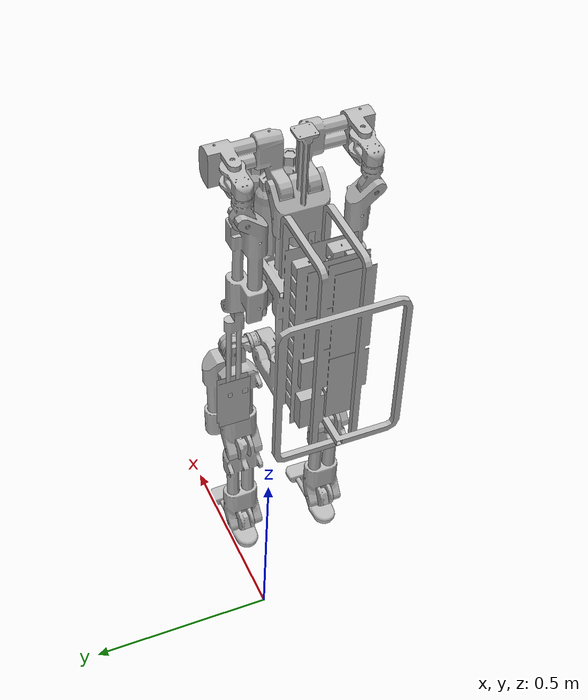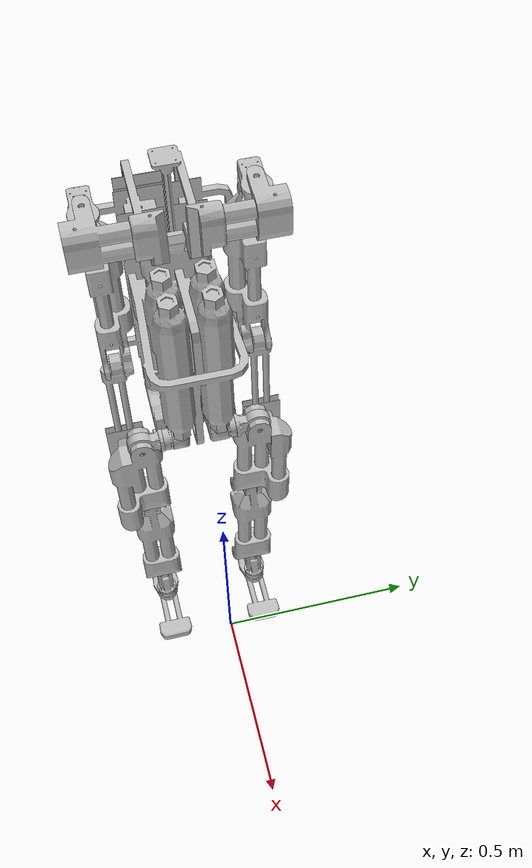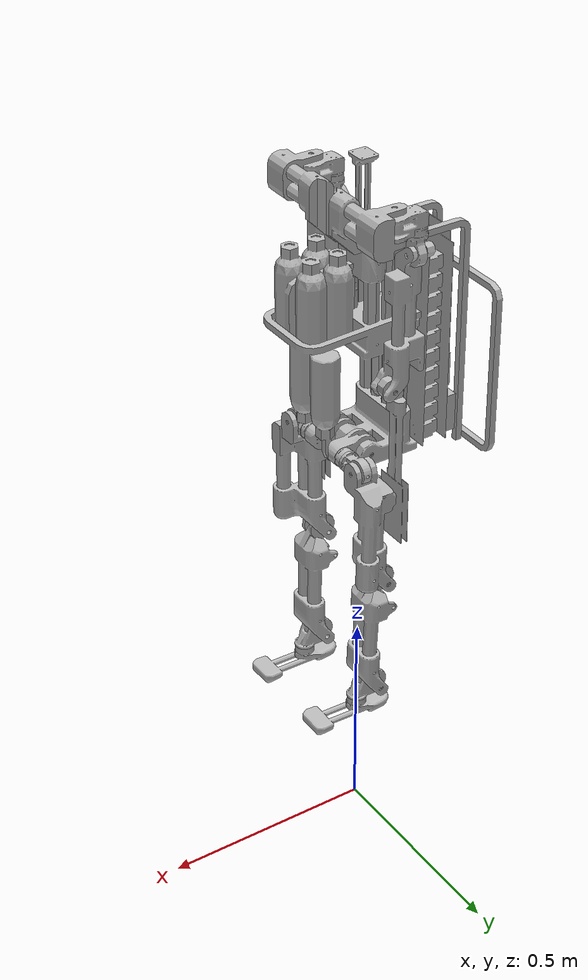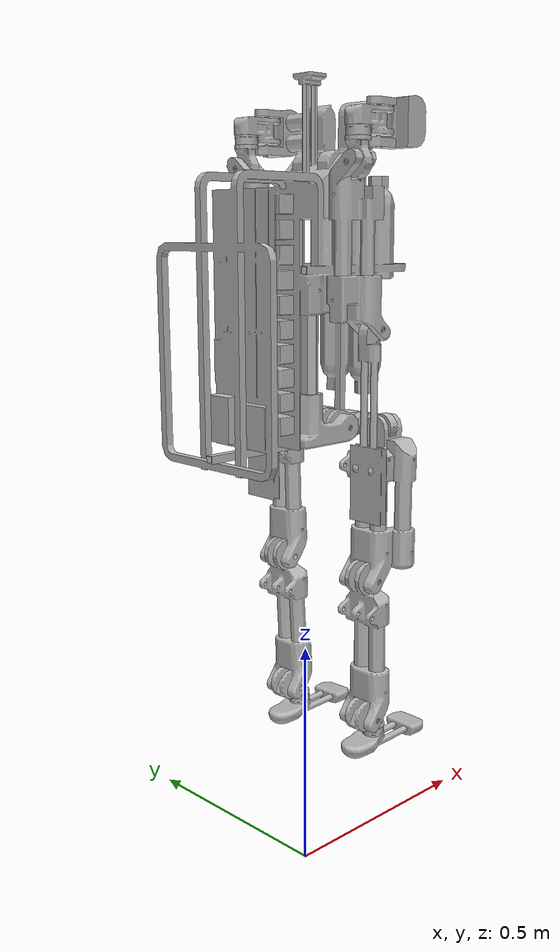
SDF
<?xml version='1.0'?>
<sdf version='1.5'>
  <model name='ATHLETE_ROBOT_CY'>
    <pose>0 0 1 1.57 0 0</pose>
    <link name='trunk'>
      <pose>0 0 0 0 -0 0</pose>
      <inertial>
        <pose>-0.0961522 0.204529 0.0399363 0 -0 0</pose>
        <mass>0.332145</mass>
        <inertia>
          <ixx>0.00851663</ixx>
          <ixy>-0.00152785</ixy>
          <ixz>6.63328e-05</ixz>
          <iyy>0.00387154</iyy>
          <iyz>0.0001264</iyz>
          <izz>0.0107068</izz>
        </inertia>
      </inertial>
      <collision name='trunk_collision'>
        <pose>0 0 0 0 -0 0</pose>
        <geometry>
          <mesh>
            <scale>0.001 0.001 0.001</scale>
            <uri>model://athletebot/meshes/trunk_all_asm.stl</uri>
          </mesh>
        </geometry>
        <surface>
          <contact>
            <ode/>
          </contact>
          <friction>
            <ode/>
          </friction>
        </surface>
      </collision>
      <visual name='trunk_visual'>
        <pose>0 0 0 0 -0 0</pose>
        <geometry>
          <mesh>
            <scale>0.001 0.001 0.001</scale>
            <uri>model://athletebot/meshes/trunk_all_asm.stl</uri>
          </mesh>
        </geometry>
      </visual>
      <gravity>1</gravity>
      <velocity_decay/>
      <self_collide>0</self_collide>
      <sensor name='imu_frame' type='imu'>
        <always_on>1</always_on>
        <update_rate>100</update_rate>
        <pose>-0.048 0.32 0.05 -1.5708 0 0</pose>
      </sensor>
    </link>
    <link name='l_hip_in_up'>
      <pose>0 0 -0.0185 0 -0 2.0944</pose>
      <inertial>
        <pose>-0.0266167 -0.0461861 -0.00527444 -3.14159 2.11758e-22 1.8326</pose>
        <mass>0.119145</mass>
        <inertia>
          <ixx>2.93235e-05</ixx>
          <ixy>-4.75799e-06</ixy>
          <ixz>3.35847e-06</ixz>
          <iyy>2.94109e-05</iyy>
          <iyz>3.3201e-06</iyz>
          <izz>4.42731e-05</izz>
        </inertia>
      </inertial>
      <collision name='l_hip_in_up_collision'>
        <pose>0 0 0.0185 -3.14159 2.11758e-22 1.8326</pose>
        <geometry>
          <mesh>
            <scale>0.001 0.001 0.001</scale>
            <uri>model://athletebot/meshes/l_hip_in_upper_prt.stl</uri>
          </mesh>
        </geometry>
      </collision>
      <collision name='l_hip_in_up_collision_l_hip_in_up_1'>
        <pose>-0.0275 -0.0476314 -0.0048 -3.14159 -0 1.5708</pose>
        <geometry>
          <mesh>
            <scale>0.001 0.001 0.001</scale>
            <uri>model://athletebot/meshes/ftsensor45a_asm.stl</uri>
          </mesh>
        </geometry>
      </collision>
      <visual name='l_hip_in_up_visual'>
        <pose>0 0 0.0185 -3.14159 2.11758e-22 1.8326</pose>
        <geometry>
          <mesh>
            <scale>0.001 0.001 0.001</scale>
            <uri>model://athletebot/meshes/l_hip_in_upper_prt.stl</uri>
          </mesh>
        </geometry>
      </visual>
      <visual name='l_hip_in_up_visual_l_hip_in_up_1'>
        <pose>-0.0275 -0.0476314 -0.0048 -3.14159 -0 1.5708</pose>
        <geometry>
          <mesh>
            <scale>0.001 0.001 0.001</scale>
            <uri>model://athletebot/meshes/ftsensor45a_asm.stl</uri>
          </mesh>
        </geometry>
      </visual>
    </link>
    <joint name='l_hip_pitch' type='revolute'>
      <child>l_hip_in_up</child>
      <parent>trunk</parent>
      <axis>
        <xyz>0 0 -1</xyz>
        <limit>
          <lower>-1e+16</lower>
          <upper>1e+16</upper>
        </limit>
        <dynamics>
          <damping>0.1</damping>
          <friction>0</friction>
          <spring_reference>0</spring_reference>
          <spring_stiffness>0</spring_stiffness>
        </dynamics>
        <use_parent_model_frame>1</use_parent_model_frame>
      </axis>
    </joint>
    <link name='l_hip_in_low'>
      <pose>4.10503e-14 2.55401e-13 -5.68642e-15 -3.14159 -5.35298e-14 -2.35619</pose>
      <inertial>
        <pose>-0.0387252 -0.0387252 0.0709537 0 -0 0</pose>
        <mass>0.0026393</mass>
        <inertia>
          <ixx>1.5938e-06</ixx>
          <ixy>1.4244e-07</ixy>
          <ixz>9.25979e-09</ixz>
          <iyy>1.5938e-06</iyy>
          <iyz>9.26001e-09</iyz>
          <izz>5.98715e-07</izz>
        </inertia>
      </inertial>
      <collision name='l_hip_in_low_collision'>
        <pose>0 0 0 0 -0 0</pose>
        <geometry>
          <mesh>
            <scale>0.001 0.001 0.001</scale>
            <uri>model://athletebot/meshes/l_hip_in_lower_part_prt.stl</uri>
          </mesh>
        </geometry>
      </collision>
      <visual name='l_hip_in_low_visual'>
        <pose>0 0 0 0 -0 0</pose>
        <geometry>
          <mesh>
            <scale>0.001 0.001 0.001</scale>
            <uri>model://athletebot/meshes/l_hip_in_lower_part_prt.stl</uri>
          </mesh>
        </geometry>
      </visual>
    </link>
    <joint name='l_hip_fixed' type='revolute'>
      <child>l_hip_in_low</child>
      <parent>l_hip_in_up</parent>
      <axis>
        <xyz>-0.707107 -0.707107 5.35298e-14</xyz>
        <limit>
          <lower>0</lower>
          <upper>0</upper>
          <effort>50000</effort>
          <velocity>0.0001</velocity>
        </limit>
        <dynamics>
          <damping>0.1</damping>
          <friction>0</friction>
          <spring_reference>0</spring_reference>
          <spring_stiffness>0</spring_stiffness>
        </dynamics>
        <use_parent_model_frame>1</use_parent_model_frame>
      </axis>
      <sensor name='left_leg_ft' type='force_torque'>
        <always_on>1</always_on>
        <update_rate>100</update_rate>
        <pose>0 0 0 0 0 0</pose>
	<plugin name='ftsensor_left_leg' filename='libgazebo_yarp_forcetorque.so'>
	  <yarpConfigurationFile>model://athletebot/conf/FT/athletebot_left_leg_ft.ini</yarpConfigurationFile>
	</plugin>
      </sensor>
    </joint>
    <link name='l_thigh'>
      <pose>0.055 1.23009e-13 -0.085 -0.0316366 -1.03413e-13 -6.58627e-12</pose>
      <inertial>
        <pose>-0.0200777 -0.150386 -0.0144973 0 -0 0</pose>
        <mass>0.0509332</mass>
        <inertia>
          <ixx>0.000488988</ixx>
          <ixy>-2.98609e-05</ixy>
          <ixz>1.88652e-05</ixz>
          <iyy>7.96235e-05</iyy>
          <iyz>-3.52041e-06</iyz>
          <izz>0.000473744</izz>
        </inertia>
      </inertial>
      <collision name='l_thigh_collision'>
        <pose>-0.055 -0.300401 0 0 -0 0</pose>
        <geometry>
          <mesh>
            <scale>0.001 0.001 0.001</scale>
            <uri>model://athletebot/meshes/l_thigh_asm.stl</uri>
          </mesh>
        </geometry>
      </collision>
      <visual name='l_thigh_visual'>
        <pose>-0.055 -0.300401 0 0 -0 0</pose>
        <geometry>
          <mesh>
            <scale>0.001 0.001 0.001</scale>
            <uri>model://athletebot/meshes/l_thigh_asm.stl</uri>
          </mesh>
        </geometry>
      </visual>
    </link>
    <joint name='l_hip_roll' type='revolute'>
      <child>l_thigh</child>
      <parent>l_hip_in_low</parent>
      <axis>
        <xyz>1 -6.58627e-12 1.03413e-13</xyz>
        <limit>
          <lower>-1.5708</lower>
          <upper>1.5708</upper>
          <effort>50000</effort>
          <velocity>50000</velocity>
        </limit>
        <dynamics>
          <damping>0.223</damping>
          <friction>0</friction>
          <spring_reference>0</spring_reference>
          <spring_stiffness>0</spring_stiffness>
        </dynamics>
        <use_parent_model_frame>1</use_parent_model_frame>
      </axis>
    </joint>
    <link name='l_shank'>
      <pose>-1.94253e-12 -0.300251 -0.0754979 -0.0316264 0.000803033 0.0253773</pose>
      <inertial>
        <pose>0.0168768 -0.152352 -0.000303936 0 -0 0</pose>
        <mass>0.0348498</mass>
        <inertia>
          <ixx>0.000347096</ixx>
          <ixy>3.5249e-06</ixy>
          <ixz>-1.88168e-07</ixz>
          <iyy>2.93664e-05</iyy>
          <iyz>-1.36816e-06</iyz>
          <izz>0.000335591</izz>
        </inertia>
      </inertial>
      <collision name='l_shank_collision'>
        <pose>0 -0.3 0 0 -0 0</pose>
        <geometry>
          <mesh>
            <scale>0.001 0.001 0.001</scale>
            <uri>model://athletebot/meshes/l_shank_asm.stl</uri>
          </mesh>
        </geometry>
      </collision>
      <visual name='l_shank_visual'>
        <pose>0 -0.3 0 0 -0 0</pose>
        <geometry>
          <mesh>
            <scale>0.001 0.001 0.001</scale>
            <uri>model://athletebot/meshes/l_shank_asm.stl</uri>
          </mesh>
        </geometry>
      </visual>
    </link>
    <joint name='l_knee_pitch' type='revolute'>
      <child>l_shank</child>
      <parent>l_thigh</parent>
      <axis>
        <xyz>3.75738e-10 -0.0316313 -0.9995</xyz>
        <limit>
          <lower>-2.61799</lower>
          <upper>2.61799</upper>
          <effort>50000</effort>
          <velocity>50000</velocity>
        </limit>
        <dynamics>
          <damping>0.223</damping>
          <friction>0</friction>
          <spring_reference>0</spring_reference>
          <spring_stiffness>0</spring_stiffness>
        </dynamics>
        <use_parent_model_frame>1</use_parent_model_frame>
      </axis>
    </joint>
    <link name='l_foot'>
      <pose>0.00761619 -0.596639 0.0403295 -3.14079 0.0316264 1.5962</pose>
      <inertial>
        <pose>-0.00794449 0.00691015 0.106394 0 -0 0</pose>
        <mass>0.00435303</mass>
        <inertia>
          <ixx>2.52928e-06</ixx>
          <ixy>5.4451e-07</ixy>
          <ixz>0</ixz>
          <iyy>1.95993e-06</iyy>
          <iyz>0</iyz>
          <izz>3.24897e-06</izz>
        </inertia>
      </inertial>
      <collision name='l_foot_collision'>
        <pose>3.9051e-07 0 0.106394 0 -0 0</pose>
        <geometry>
          <mesh>
            <scale>0.001 0.001 0.001</scale>
            <uri>model://athletebot/meshes/l_foot_prt.stl</uri>
          </mesh>
        </geometry>
      </collision>
      <visual name='l_foot_visual'>
        <pose>3.9051e-07 0 0.106394 0 -0 0</pose>
        <geometry>
          <mesh>
            <scale>0.001 0.001 0.001</scale>
            <uri>model://athletebot/meshes/l_foot_prt.stl</uri>
          </mesh>
        </geometry>
      </visual>
    </link>
    <joint name='l_ankle_pitch' type='revolute'>
      <child>l_foot</child>
      <parent>l_shank</parent>
      <axis>
        <xyz>3.65506e-10 -0.0316313 -0.9995</xyz>
        <limit>
          <lower>-1.5708</lower>
          <upper>1.5708</upper>
          <effort>50000</effort>
          <velocity>50000</velocity>
        </limit>
        <dynamics>
          <damping>0.223</damping>
          <friction>0</friction>
          <spring_reference>0</spring_reference>
          <spring_stiffness>0</spring_stiffness>
        </dynamics>
        <use_parent_model_frame>1</use_parent_model_frame>
      </axis>
    </joint>
    <link name='l_foot_ftsens'>
      <pose>0.0438489 -0.648076 -0.0644902 -1.60729 -0.522507 0.0436231</pose>
      <inertial>
        <pose>0.00134713 0.000826301 0.000493952 0 -0 0</pose>
        <mass>0.120097</mass>
        <inertia>
          <ixx>3.49386e-05</ixx>
          <ixy>-1.7733e-05</ixy>
          <ixz>3.84468e-06</ixz>
          <iyy>5.55144e-05</iyy>
          <iyz>2.18853e-06</iyz>
          <izz>7.77467e-05</izz>
        </inertia>
      </inertial>
      <collision name='l_foot_ftsens_collision'>
        <pose>0 0 0 0 -0 0</pose>
        <geometry>
          <mesh>
            <scale>0.001 0.001 0.001</scale>
            <uri>model://athletebot/meshes/ftsensor45a_asm.stl</uri>
          </mesh>
        </geometry>
      </collision>
      <collision name='l_foot_ftsens_collision_l_foot_ftsens_1'>
        <pose>-0.0303108 -0.0175 0.0282003 1.5708 -2.8489e-07 0.523599</pose>
        <geometry>
          <mesh>
            <scale>0.001 0.001 0.001</scale>
            <uri>model://athletebot/meshes/l_sole_asm.stl</uri>
          </mesh>
        </geometry>
      </collision>
      <visual name='l_foot_ftsens_visual'>
        <pose>0 0 0 0 -0 0</pose>
        <geometry>
          <mesh>
            <scale>0.001 0.001 0.001</scale>
            <uri>model://athletebot/meshes/ftsensor45a_asm.stl</uri>
          </mesh>
        </geometry>
      </visual>
      <visual name='l_foot_ftsens_visual_l_foot_ftsens_1'>
        <pose>-0.0303108 -0.0175 0.0282003 1.5708 -2.8489e-07 0.523599</pose>
        <geometry>
          <mesh>
            <scale>0.001 0.001 0.001</scale>
            <uri>model://athletebot/meshes/l_sole_asm.stl</uri>
          </mesh>
        </geometry>
      </visual>
    </link>
    <joint name='l_foot_fixed' type='revolute'>
      <child>l_foot_ftsens</child>
      <parent>l_foot</parent>
      <axis>
        <xyz>0.865746 0.0377905 0.499054</xyz>
        <limit>
          <lower>0</lower>
          <upper>0</upper>
          <effort>50000</effort>
          <velocity>0.0001</velocity>
        </limit>
        <dynamics>
          <damping>0.1</damping>
          <friction>0</friction>
          <spring_reference>0</spring_reference>
          <spring_stiffness>0</spring_stiffness>
        </dynamics>
        <use_parent_model_frame>1</use_parent_model_frame>
      </axis>
      <sensor name='left_foot_ft' type='force_torque'>
        <always_on>1</always_on>
        <update_rate>100</update_rate>
        <pose>0 0 0 0 0 0</pose>
	<plugin name='ftsensor_left_foot' filename='libgazebo_yarp_forcetorque.so'>
	  <yarpConfigurationFile>model://athletebot/conf/FT/athletebot_left_foot_ft.ini</yarpConfigurationFile>
	</plugin>
      </sensor>
    </joint>
    <link name='l_shoulder_lateral'>
      <pose>0 0.5 -0.0931175 0 -0 0</pose>
      <inertial>
        <pose>0.0400974 0.058849 0.0294444 0 -0 0</pose>
        <mass>0.0241779</mass>
        <inertia>
          <ixx>0.00011666</ixx>
          <ixy>-8.61211e-06</ixy>
          <ixz>5.63375e-06</ixz>
          <iyy>0.000102116</iyy>
          <iyz>2.04937e-05</iyz>
          <izz>4.70351e-05</izz>
        </inertia>
      </inertial>
      <collision name='l_shoulder_lateral_collision'>
        <pose>0 0 0.0991175 0 -0 0</pose>
        <geometry>
          <mesh>
            <scale>0.001 0.001 0.001</scale>
            <uri>model://athletebot/meshes/l_shoulder_lateral_asm.stl</uri>
          </mesh>
        </geometry>
      </collision>
      <visual name='l_shoulder_lateral_visual'>
        <pose>0 0 0.0991175 0 -0 0</pose>
        <geometry>
          <mesh>
            <scale>0.001 0.001 0.001</scale>
            <uri>model://athletebot/meshes/l_shoulder_lateral_asm.stl</uri>
          </mesh>
        </geometry>
      </visual>
    </link>
    <joint name='l_shoulder_pitch' type='revolute'>
      <child>l_shoulder_lateral</child>
      <parent>trunk</parent>
      <axis>
        <xyz>0 0 1</xyz>
        <limit>
          <lower>-2.61799</lower>
          <upper>2.61799</upper>
          <effort>50000</effort>
          <velocity>50000</velocity>
        </limit>
        <dynamics>
          <damping>0.223</damping>
          <friction>0</friction>
          <spring_reference>0</spring_reference>
          <spring_stiffness>0</spring_stiffness>
        </dynamics>
        <use_parent_model_frame>1</use_parent_model_frame>
      </axis>
    </joint>
    <link name='l_shoulder_in_up'>
      <pose>0 0.430973 -0.11 1.5708 0.785398 -7.85046e-17</pose>
      <inertial>
        <pose>-0.0378851 -0.0378244 -0.125728 0 -0 0</pose>
        <mass>0.118046</mass>
        <inertia>
          <ixx>2.64173e-05</ixx>
          <ixy>-4.23745e-06</ixy>
          <ixz>1.80163e-06</ixz>
          <iyy>2.65024e-05</iyy>
          <iyz>1.76698e-06</iyz>
          <izz>4.19971e-05</izz>
        </inertia>
      </inertial>
      <collision name='l_shoulder_in_up_collision'>
        <pose>0 0 -0.141027 0 -0 0</pose>
        <geometry>
          <mesh>
            <scale>0.001 0.001 0.001</scale>
            <uri>model://athletebot/meshes/l_shoulder_in_upper_prt.stl</uri>
          </mesh>
        </geometry>
      </collision>
      <collision name='l_shoulder_in_up_collision_l_shoulder_in_up_1'>
        <pose>-0.0388909 -0.0388909 -0.126727 0 -0 0.261799</pose>
        <geometry>
          <mesh>
            <scale>0.001 0.001 0.001</scale>
            <uri>model://athletebot/meshes/ftsensor45a_asm.stl</uri>
          </mesh>
        </geometry>
      </collision>
      <visual name='l_shoulder_in_up_visual'>
        <pose>0 0 -0.141027 0 -0 0</pose>
        <geometry>
          <mesh>
            <scale>0.001 0.001 0.001</scale>
            <uri>model://athletebot/meshes/l_shoulder_in_upper_prt.stl</uri>
          </mesh>
        </geometry>
      </visual>
      <visual name='l_shoulder_in_up_visual_l_shoulder_in_up_1'>
        <pose>-0.0388909 -0.0388909 -0.126727 0 -0 0.261799</pose>
        <geometry>
          <mesh>
            <scale>0.001 0.001 0.001</scale>
            <uri>model://athletebot/meshes/ftsensor45a_asm.stl</uri>
          </mesh>
        </geometry>
      </visual>
    </link>
    <joint name='l_shoulder_yaw' type='revolute'>
      <child>l_shoulder_in_up</child>
      <parent>l_shoulder_lateral</parent>
      <axis>
        <xyz>-3.46251e-12 1 -3.46255e-12</xyz>
        <limit>
          <lower>-2.61799</lower>
          <upper>2.61799</upper>
          <effort>50000</effort>
          <velocity>50000</velocity>
        </limit>
        <dynamics>
          <damping>0.223</damping>
          <friction>0</friction>
          <spring_reference>0</spring_reference>
          <spring_stiffness>0</spring_stiffness>
        </dynamics>
        <use_parent_model_frame>1</use_parent_model_frame>
      </axis>
    </joint>
    <link name='l_shoulder_in_low'>
      <pose>-4.97723e-13 0.572 -0.11 1.5708 0.785398 -7.85046e-17</pose>
      <inertial>
        <pose>-0.0388216 -0.0388217 0.061047 0 -0 0</pose>
        <mass>0.00263007</mass>
        <inertia>
          <ixx>1.52173e-06</ixx>
          <ixy>1.44976e-07</ixy>
          <ixz>4.293e-09</ixz>
          <iyy>1.52173e-06</iyy>
          <iyz>4.29116e-09</iyz>
          <izz>5.9826e-07</izz>
        </inertia>
      </inertial>
      <collision name='l_shoulder_in_low_collision'>
        <pose>0 0 0 0 -0 0</pose>
        <geometry>
          <mesh>
            <scale>0.001 0.001 0.001</scale>
            <uri>model://athletebot/meshes/l_shoulder_in_lower_part_prt.stl</uri>
          </mesh>
        </geometry>
      </collision>
      <visual name='l_shoulder_in_low_visual'>
        <pose>0 0 0 0 -0 0</pose>
        <geometry>
          <mesh>
            <scale>0.001 0.001 0.001</scale>
            <uri>model://athletebot/meshes/l_shoulder_in_lower_part_prt.stl</uri>
          </mesh>
        </geometry>
      </visual>
    </link>
    <joint name='l_shoulder_fixed' type='revolute'>
      <child>l_shoulder_in_low</child>
      <parent>l_shoulder_in_up</parent>
      <axis>
        <xyz>0.707107 0 -0.707107</xyz>
        <limit>
          <lower>0</lower>
          <upper>0</upper>
          <effort>50000</effort>
          <velocity>0.0001</velocity>
        </limit>
        <dynamics>
          <damping>0.1</damping>
          <friction>0</friction>
          <spring_reference>0</spring_reference>
          <spring_stiffness>0</spring_stiffness>
        </dynamics>
        <use_parent_model_frame>1</use_parent_model_frame>
      </axis>
      <sensor name='left_arm_ft' type='force_torque'>
        <always_on>1</always_on>
        <update_rate>100</update_rate>
        <pose>0 0 0 0 0 0</pose>
	<plugin name='ftsensor_left_arm' filename='libgazebo_yarp_forcetorque.so'>
	  <yarpConfigurationFile>model://athletebot/conf/FT/athletebot_left_arm_ft.ini</yarpConfigurationFile>
	</plugin>
      </sensor>
    </joint>
    <link name='l_humerous'>
      <pose>-0.055 0.498 -0.11 1.43421e-12 -2.48295e-24 3.46245e-12</pose>
      <inertial>
        <pose>0.0125929 -0.14822 0.0175614 0 -0 0</pose>
        <mass>0.0324319</mass>
        <inertia>
          <ixx>0.000293621</ixx>
          <ixy>2.02973e-05</ixy>
          <ixz>6.52102e-06</ixz>
          <iyy>3.23056e-05</iyy>
          <iyz>-1.7379e-06</iyz>
          <izz>0.000304934</izz>
        </inertia>
      </inertial>
      <collision name='l_humerous_collision'>
        <pose>0 0 0 0 -0 0</pose>
        <geometry>
          <mesh>
            <scale>0.001 0.001 0.001</scale>
            <uri>model://athletebot/meshes/l_humerous_asm.stl</uri>
          </mesh>
        </geometry>
      </collision>
      <visual name='l_humerous_visual'>
        <pose>0 0 0 0 -0 0</pose>
        <geometry>
          <mesh>
            <scale>0.001 0.001 0.001</scale>
            <uri>model://athletebot/meshes/l_humerous_asm.stl</uri>
          </mesh>
        </geometry>
      </visual>
    </link>
    <joint name='l_shoulder_roll' type='revolute'>
      <child>l_humerous</child>
      <parent>l_shoulder_in_low</parent>
      <axis>
        <xyz>-1 -3.46245e-12 -2.48295e-24</xyz>
        <limit>
          <lower>-1.5708</lower>
          <upper>1.5708</upper>
          <effort>50000</effort>
          <velocity>50000</velocity>
        </limit>
        <dynamics>
          <damping>0.223</damping>
          <friction>0</friction>
          <spring_reference>0</spring_reference>
          <spring_stiffness>0</spring_stiffness>
        </dynamics>
        <use_parent_model_frame>1</use_parent_model_frame>
      </axis>
    </joint>
    <link name='l_forearm'>
      <pose>8.1108e-13 0.198 -0.11 1.43421e-12 -2.48295e-24 3.46245e-12</pose>
      <inertial>
        <pose>-0.0135034 -0.145081 0.002006 0 -0 0</pose>
        <mass>0.00613751</mass>
        <inertia>
          <ixx>0.000111157</ixx>
          <ixy>-3.11283e-06</ixy>
          <ixz>-1.11372e-07</ixz>
          <iyy>2.18322e-06</iyy>
          <iyz>-1.71897e-06</iyz>
          <izz>0.000110384</izz>
        </inertia>
      </inertial>
      <collision name='l_forearm_collision'>
        <pose>0 0 0 0 -0 0</pose>
        <geometry>
          <mesh>
            <scale>0.001 0.001 0.001</scale>
            <uri>model://athletebot/meshes/l_forearm_asm.stl</uri>
          </mesh>
        </geometry>
      </collision>
      <visual name='l_forearm_visual'>
        <pose>0 0 0 0 -0 0</pose>
        <geometry>
          <mesh>
            <scale>0.001 0.001 0.001</scale>
            <uri>model://athletebot/meshes/l_forearm_asm.stl</uri>
          </mesh>
        </geometry>
      </visual>
    </link>
    <joint name='l_elbow_pitch' type='revolute'>
      <child>l_forearm</child>
      <parent>l_humerous</parent>
      <axis>
        <xyz>-2.48295e-24 1.43421e-12 -1</xyz>
        <limit>
          <lower>-2.61799</lower>
          <upper>2.61799</upper>
          <effort>50000</effort>
          <velocity>50000</velocity>
        </limit>
        <dynamics>
          <damping>0.223</damping>
          <friction>0</friction>
          <spring_reference>0</spring_reference>
          <spring_stiffness>0</spring_stiffness>
        </dynamics>
        <use_parent_model_frame>1</use_parent_model_frame>
      </axis>
    </joint>
    <link name='r_hip_in_up'>
      <pose>0 0 0.0985 -3.14159 -0 0</pose>
      <inertial>
        <pose>0.0241627 0 0.0183179 0 -0 2.35619</pose>
        <mass>0.00643815</mass>
        <inertia>
          <ixx>4.05418e-06</ixx>
          <ixy>-1.84253e-06</ixy>
          <ixz>-4.0103e-08</ixz>
          <iyy>4.05418e-06</iyy>
          <iyz>-4.01016e-08</iyz>
          <izz>6.47614e-06</izz>
        </inertia>
      </inertial>
      <collision name='r_hip_in_up_collision'>
        <pose>0 0 0.0185 0 -0 2.35619</pose>
        <geometry>
          <mesh>
            <scale>0.001 0.001 0.001</scale>
            <uri>model://athletebot/meshes/r_hip_in_upper_prt.stl</uri>
          </mesh>
        </geometry>
      </collision>
      <visual name='r_hip_in_up_visual'>
        <pose>0 0 0.0185 0 -0 2.35619</pose>
        <geometry>
          <mesh>
            <scale>0.001 0.001 0.001</scale>
            <uri>model://athletebot/meshes/r_hip_in_upper_prt.stl</uri>
          </mesh>
        </geometry>
      </visual>
    </link>
    <joint name='r_hip_pitch' type='revolute'>
      <child>r_hip_in_up</child>
      <parent>trunk</parent>
      <axis>
        <xyz>0 2.06823e-13 -1</xyz>
        <limit>
          <lower>-1e+16</lower>
          <upper>1e+16</upper>
        </limit>
        <dynamics>
          <damping>0.1</damping>
          <friction>0</friction>
          <spring_reference>0</spring_reference>
          <spring_stiffness>0</spring_stiffness>
        </dynamics>
        <use_parent_model_frame>1</use_parent_model_frame>
      </axis>
    </joint>
    <link name='r_hip_ftsens'>
      <pose>0.055 -9.92751e-16 0.1033 2.06823e-13 2.06823e-13 -1.5708</pose>
      <inertial>
        <pose>2.3187e-06 5.3e-05 0.001822 0 -0 0</pose>
        <mass>0.112707</mass>
        <inertia>
          <ixx>1.85914e-05</ixx>
          <ixy>-4.08392e-09</ixy>
          <ixz>-1.81089e-09</ixz>
          <iyy>1.86776e-05</iyy>
          <iyz>-2.45183e-08</iyz>
          <izz>3.20162e-05</izz>
        </inertia>
      </inertial>
      <collision name='r_hip_ftsens_collision'>
        <pose>0 0 0 0 -0 0</pose>
        <geometry>
          <mesh>
            <scale>0.001 0.001 0.001</scale>
            <uri>model://athletebot/meshes/ftsensor45a_asm.stl</uri>
          </mesh>
        </geometry>
      </collision>
      <visual name='r_hip_ftsens_visual'>
        <pose>0 0 0 0 -0 0</pose>
        <geometry>
          <mesh>
            <scale>0.001 0.001 0.001</scale>
            <uri>model://athletebot/meshes/ftsensor45a_asm.stl</uri>
          </mesh>
        </geometry>
      </visual>
    </link>
    <joint name='r_hip_ft' type='revolute'>
      <child>r_hip_ftsens</child>
      <parent>r_hip_in_up</parent>
      <axis>
        <xyz>4.89658e-12 -1 -2.06823e-13</xyz>
        <limit>
          <lower>0</lower>
          <upper>0</upper>
          <effort>50000</effort>
          <velocity>0.0001</velocity>
        </limit>
        <dynamics>
          <damping>0.1</damping>
          <friction>0</friction>
          <spring_reference>0</spring_reference>
          <spring_stiffness>0</spring_stiffness>
        </dynamics>
        <use_parent_model_frame>1</use_parent_model_frame>
      </axis>
      <physics>
        <ode>
          <limit>
            <cfm>0</cfm>
            <erp>0.2</erp>
          </limit>
        </ode>
      </physics>
      <sensor name='r_hip_ft' type='force_torque'>
        <always_on>1</always_on>
        <update_rate>100</update_rate>
        <force_torque>
          <frame>child</frame>
          <measure_direction>child_to_parent</measure_direction>
        </force_torque>
      </sensor>
    </joint>
    <link name='r_hip_in_low'>
      <pose>4.82253e-15 -2.6549e-13 0.08 -3.14159 2.92492e-13 -2.35619</pose>
      <inertial>
        <pose>-0.0387252 -0.0387252 -0.070954 0 -0 0</pose>
        <mass>0.0026393</mass>
        <inertia>
          <ixx>1.5938e-06</ixx>
          <ixy>1.4244e-07</ixy>
          <ixz>-9.25978e-09</ixz>
          <iyy>1.5938e-06</iyy>
          <iyz>-9.26002e-09</iyz>
          <izz>5.98715e-07</izz>
        </inertia>
      </inertial>
      <collision name='r_hip_in_low_collision'>
        <pose>0 0 0 0 -0 0</pose>
        <geometry>
          <mesh>
            <scale>0.001 0.001 0.001</scale>
            <uri>model://athletebot/meshes/r_hip_in_lower_part_prt.stl</uri>
          </mesh>
        </geometry>
      </collision>
      <visual name='r_hip_in_low_visual'>
        <pose>0 0 0 0 -0 0</pose>
        <geometry>
          <mesh>
            <scale>0.001 0.001 0.001</scale>
            <uri>model://athletebot/meshes/r_hip_in_lower_part_prt.stl</uri>
          </mesh>
        </geometry>
      </visual>
    </link>
    <joint name='r_hip_fixed' type='revolute'>
      <child>r_hip_in_low</child>
      <parent>r_hip_ftsens</parent>
      <axis>
        <xyz>-0.707107 -0.707107 -2.92492e-13</xyz>
        <limit>
          <lower>0</lower>
          <upper>0</upper>
          <effort>50000</effort>
          <velocity>0.0001</velocity>
        </limit>
        <dynamics>
          <damping>0.1</damping>
          <friction>0</friction>
          <spring_reference>0</spring_reference>
          <spring_stiffness>0</spring_stiffness>
        </dynamics>
        <use_parent_model_frame>1</use_parent_model_frame>
      </axis>
      <sensor name='right_leg_ft' type='force_torque'>
        <always_on>1</always_on>
        <update_rate>100</update_rate>
        <pose>0 0 0 0 0 0</pose>
        <plugin name='ftsensor_right_leg' filename='libgazebo_yarp_forcetorque.so'>
	  <yarpConfigurationFile>model://athletebot/conf/FT/athletebot_right_leg_ft.ini</yarpConfigurationFile>
	</plugin>
      </sensor>
    </joint>
    <link name='r_thigh'>
      <pose>0.055 -2.55608e-14 0.165 0.00594316 -3.53069e-13 1.51057e-16</pose>
      <inertial>
        <pose>-0.0200751 -0.150387 0.01457 0 -0 0</pose>
        <mass>0.0527068</mass>
        <inertia>
          <ixx>0.000490655</ixx>
          <ixy>-2.98609e-05</ixy>
          <ixz>-1.9634e-05</ixz>
          <iyy>8.18949e-05</iyy>
          <iyz>3.52047e-06</iyz>
          <izz>0.00047454</izz>
        </inertia>
      </inertial>
      <collision name='r_thigh_collision'>
        <pose>-0.055 -0.300401 3.21303e-07 0 -0 0</pose>
        <geometry>
          <mesh>
            <scale>0.001 0.001 0.001</scale>
            <uri>model://athletebot/meshes/r_thigh_asm.stl</uri>
          </mesh>
        </geometry>
      </collision>
      <visual name='r_thigh_visual'>
        <pose>-0.055 -0.300401 3.21303e-07 0 -0 0</pose>
        <geometry>
          <mesh>
            <scale>0.001 0.001 0.001</scale>
            <uri>model://athletebot/meshes/r_thigh_asm.stl</uri>
          </mesh>
        </geometry>
      </visual>
    </link>
    <joint name='r_hip_roll' type='revolute'>
      <child>r_thigh</child>
      <parent>r_hip_in_low</parent>
      <axis>
        <xyz>-1 -1.51057e-16 -3.53069e-13</xyz>
        <limit>
          <lower>-1.5708</lower>
          <upper>1.5708</upper>
          <effort>50000</effort>
          <velocity>50000</velocity>
        </limit>
        <dynamics>
          <damping>0.223</damping>
          <friction>0</friction>
          <spring_reference>0</spring_reference>
          <spring_stiffness>0</spring_stiffness>
        </dynamics>
        <use_parent_model_frame>1</use_parent_model_frame>
      </axis>
    </joint>
    <link name='r_shank'>
      <pose>-8.04912e-16 -0.299764 0.0568222 0.00594238 -9.61888e-05 0.0161853</pose>
      <inertial>
        <pose>0.0168768 -0.152352 0.106698 0 -0 0</pose>
        <mass>0.0348498</mass>
        <inertia>
          <ixx>0.000347096</ixx>
          <ixy>3.5249e-06</ixy>
          <ixz>1.88168e-07</ixz>
          <iyy>2.93664e-05</iyy>
          <iyz>1.36816e-06</iyz>
          <izz>0.000335591</izz>
        </inertia>
      </inertial>
      <collision name='r_shank_collision'>
        <pose>0 -0.3 0.106394 0 -0 0</pose>
        <geometry>
          <mesh>
            <scale>0.001 0.001 0.001</scale>
            <uri>model://athletebot/meshes/r_shank_asm.stl</uri>
          </mesh>
        </geometry>
      </collision>
      <visual name='r_shank_visual'>
        <pose>0 -0.3 0.106394 0 -0 0</pose>
        <geometry>
          <mesh>
            <scale>0.001 0.001 0.001</scale>
            <uri>model://athletebot/meshes/r_shank_asm.stl</uri>
          </mesh>
        </geometry>
      </visual>
    </link>
    <joint name='r_knee_pitch' type='revolute'>
      <child>r_shank</child>
      <parent>r_thigh</parent>
      <axis>
        <xyz>-6.69317e-11 0.00594312 -0.999982</xyz>
        <limit>
          <lower>-2.61799</lower>
          <upper>2.61799</upper>
          <effort>50000</effort>
          <velocity>50000</velocity>
        </limit>
        <dynamics>
          <damping>0.223</damping>
          <friction>0</friction>
          <spring_reference>0</spring_reference>
          <spring_stiffness>0</spring_stiffness>
        </dynamics>
        <use_parent_model_frame>1</use_parent_model_frame>
      </axis>
    </joint>
    <link name='r_foot'>
      <pose>0.00485546 -0.599719 0.0550395 3.1415 -0.00594242 1.58659</pose>
      <inertial>
        <pose>-0.00794493 0.00691014 -0.106394 0 -0 0</pose>
        <mass>0.00435303</mass>
        <inertia>
          <ixx>2.52928e-06</ixx>
          <ixy>5.4451e-07</ixy>
          <ixz>0</ixz>
          <iyy>1.95993e-06</iyy>
          <iyz>0</iyz>
          <izz>3.24897e-06</izz>
        </inertia>
      </inertial>
      <collision name='r_foot_collision'>
        <pose>-6.85237e-07 0 -0.106394 0 -0 0</pose>
        <geometry>
          <mesh>
            <scale>0.001 0.001 0.001</scale>
            <uri>model://athletebot/meshes/r_foot_prt.stl</uri>
          </mesh>
        </geometry>
      </collision>
      <visual name='r_foot_visual'>
        <pose>-6.85237e-07 0 -0.106394 0 -0 0</pose>
        <geometry>
          <mesh>
            <scale>0.001 0.001 0.001</scale>
            <uri>model://athletebot/meshes/r_foot_prt.stl</uri>
          </mesh>
        </geometry>
      </visual>
    </link>
    <joint name='r_ankle_pitch' type='revolute'>
      <child>r_foot</child>
      <parent>r_shank</parent>
      <axis>
        <xyz>-5.92613e-11 0.00594312 -0.999982</xyz>
        <limit>
          <lower>-1.5708</lower>
          <upper>1.5708</upper>
          <effort>50000</effort>
          <velocity>50000</velocity>
        </limit>
        <dynamics>
          <damping>0.223</damping>
          <friction>0</friction>
          <spring_reference>0</spring_reference>
          <spring_stiffness>0</spring_stiffness>
        </dynamics>
        <use_parent_model_frame>1</use_parent_model_frame>
      </axis>
    </joint>
    <link name='r_foot_ftsens'>
      <pose>0.0406248 -0.648792 0.161144 -1.56393 -0.523682 0.0123594</pose>
      <inertial>
        <pose>0.00134719 0.000826374 0.000493363 0 -0 0</pose>
        <mass>0.120097</mass>
        <inertia>
          <ixx>3.49382e-05</ixx>
          <ixy>-1.7733e-05</ixy>
          <ixz>3.84452e-06</ixz>
          <iyy>5.55141e-05</iyy>
          <iyz>2.1884e-06</iyz>
          <izz>7.77467e-05</izz>
        </inertia>
      </inertial>
      <collision name='r_foot_ftsens_collision'>
        <pose>0 0 0 0 -0 0</pose>
        <geometry>
          <mesh>
            <scale>0.001 0.001 0.001</scale>
            <uri>model://athletebot/meshes/ftsensor45a_asm.stl</uri>
          </mesh>
        </geometry>
      </collision>
      <collision name='r_foot_ftsens_collision_r_foot_ftsens_1'>
        <pose>-0.030311 -0.0174997 0.0281997 1.5708 -4.41245e-07 0.523599</pose>
        <geometry>
          <mesh>
            <scale>0.001 0.001 0.001</scale>
            <uri>model://athletebot/meshes/r_sole_asm.stl</uri>
          </mesh>
        </geometry>
      </collision>
      <visual name='r_foot_ftsens_visual'>
        <pose>0 0 0 0 -0 0</pose>
        <geometry>
          <mesh>
            <scale>0.001 0.001 0.001</scale>
            <uri>model://athletebot/meshes/ftsensor45a_asm.stl</uri>
          </mesh>
        </geometry>
      </visual>
      <visual name='r_foot_ftsens_visual_r_foot_ftsens_1'>
        <pose>-0.030311 -0.0174997 0.0281997 1.5708 -4.41245e-07 0.523599</pose>
        <geometry>
          <mesh>
            <scale>0.001 0.001 0.001</scale>
            <uri>model://athletebot/meshes/r_sole_asm.stl</uri>
          </mesh>
        </geometry>
      </visual>
    </link>
    <joint name='r_foot_fixed' type='revolute'>
      <child>r_foot_ftsens</child>
      <parent>r_foot</parent>
      <axis>
        <xyz>0.865917 0.0107028 0.500072</xyz>
        <limit>
          <lower>0</lower>
          <upper>0</upper>
          <effort>50000</effort>
          <velocity>0.0001</velocity>
        </limit>
        <dynamics>
          <damping>0.1</damping>
          <friction>0</friction>
          <spring_reference>0</spring_reference>
          <spring_stiffness>0</spring_stiffness>
        </dynamics>
        <use_parent_model_frame>1</use_parent_model_frame>
      </axis>
      <sensor name='right_foot_ft' type='force_torque'>
        <always_on>1</always_on>
        <update_rate>100</update_rate>
        <pose>0 0 0 0 0 0</pose>
	<plugin name='ftsensor_right_foot' filename='libgazebo_yarp_forcetorque.so'>
	  <yarpConfigurationFile>model://athletebot/conf/FT/athletebot_right_foot_ft.ini</yarpConfigurationFile>
        </plugin>
      </sensor>
    </joint>
    <link name='r_shoulder_lateral'>
      <pose>0 0.5 0.173118 0 -0 0</pose>
      <inertial>
        <pose>0.0400974 0.058849 -0.029445 0 -0 0</pose>
        <mass>0.0241779</mass>
        <inertia>
          <ixx>0.00011666</ixx>
          <ixy>-8.61211e-06</ixy>
          <ixz>-5.63375e-06</ixz>
          <iyy>0.000102116</iyy>
          <iyz>-2.04937e-05</iyz>
          <izz>4.70351e-05</izz>
        </inertia>
      </inertial>
      <collision name='r_shoulder_lateral_collision'>
        <pose>0 0 -0.099118 0 -0 0</pose>
        <geometry>
          <mesh>
            <scale>0.001 0.001 0.001</scale>
            <uri>model://athletebot/meshes/r_shoulder_lateral_asm.stl</uri>
          </mesh>
        </geometry>
      </collision>
      <visual name='r_shoulder_lateral_visual'>
        <pose>0 0 -0.099118 0 -0 0</pose>
        <geometry>
          <mesh>
            <scale>0.001 0.001 0.001</scale>
            <uri>model://athletebot/meshes/r_shoulder_lateral_asm.stl</uri>
          </mesh>
        </geometry>
      </visual>
    </link>
    <joint name='r_shoulder_pitch' type='revolute'>
      <child>r_shoulder_lateral</child>
      <parent>trunk</parent>
      <axis>
        <xyz>0 0 1</xyz>
        <limit>
          <lower>-2.61799</lower>
          <upper>2.61799</upper>
          <effort>50000</effort>
          <velocity>50000</velocity>
        </limit>
        <dynamics>
          <damping>0.223</damping>
          <friction>0</friction>
          <spring_reference>0</spring_reference>
          <spring_stiffness>0</spring_stiffness>
        </dynamics>
        <use_parent_model_frame>1</use_parent_model_frame>
      </axis>
    </joint>
    <link name='r_shoulder_in_up'>
      <pose>0 0.430973 0.19 -1.5708 -0.785398 -7.85046e-17</pose>
      <inertial>
        <pose>-0.0379084 -0.0379111 0.125728 0 -0 0</pose>
        <mass>0.118046</mass>
        <inertia>
          <ixx>2.64775e-05</ixx>
          <ixy>-4.18249e-06</ixy>
          <ixz>-1.81535e-06</ixz>
          <iyy>2.64687e-05</iyy>
          <iyz>-1.81818e-06</iyz>
          <izz>4.20235e-05</izz>
        </inertia>
      </inertial>
      <collision name='r_shoulder_in_up_collision'>
        <pose>0 0 0.141027 0 -0 0</pose>
        <geometry>
          <mesh>
            <scale>0.001 0.001 0.001</scale>
            <uri>model://athletebot/meshes/r_shoulder_in_upper_prt.stl</uri>
          </mesh>
        </geometry>
      </collision>
      <collision name='r_shoulder_in_up_collision_r_shoulder_in_up_1'>
        <pose>-0.0388909 -0.0388909 0.126727 -3.14159 -0 -0.785398</pose>
        <geometry>
          <mesh>
            <scale>0.001 0.001 0.001</scale>
            <uri>model://athletebot/meshes/ftsensor45a_asm.stl</uri>
          </mesh>
        </geometry>
      </collision>
      <visual name='r_shoulder_in_up_visual'>
        <pose>0 0 0.141027 0 -0 0</pose>
        <geometry>
          <mesh>
            <scale>0.001 0.001 0.001</scale>
            <uri>model://athletebot/meshes/r_shoulder_in_upper_prt.stl</uri>
          </mesh>
        </geometry>
      </visual>
      <visual name='r_shoulder_in_up_visual_r_shoulder_in_up_1'>
        <pose>-0.0388909 -0.0388909 0.126727 -3.14159 -0 -0.785398</pose>
        <geometry>
          <mesh>
            <scale>0.001 0.001 0.001</scale>
            <uri>model://athletebot/meshes/ftsensor45a_asm.stl</uri>
          </mesh>
        </geometry>
      </visual>
    </link>
    <joint name='r_shoulder_yaw' type='revolute'>
      <child>r_shoulder_in_up</child>
      <parent>r_shoulder_lateral</parent>
      <axis>
        <xyz>3.46251e-12 -1 -3.46255e-12</xyz>
        <limit>
          <lower>-2.61799</lower>
          <upper>2.61799</upper>
          <effort>50000</effort>
          <velocity>50000</velocity>
        </limit>
        <dynamics>
          <damping>0.223</damping>
          <friction>0</friction>
          <spring_reference>0</spring_reference>
          <spring_stiffness>0</spring_stiffness>
        </dynamics>
        <use_parent_model_frame>1</use_parent_model_frame>
      </axis>
    </joint>
    <link name='r_shoulder_in_low'>
      <pose>-4.7741e-13 0.572 0.19 -1.5708 -0.785398 2.06703e-13</pose>
      <inertial>
        <pose>-0.0388216 -0.0388217 -0.061047 0 -0 0</pose>
        <mass>0.00263007</mass>
        <inertia>
          <ixx>1.52173e-06</ixx>
          <ixy>1.44976e-07</ixy>
          <ixz>-4.293e-09</ixz>
          <iyy>1.52173e-06</iyy>
          <iyz>-4.29116e-09</iyz>
          <izz>5.9826e-07</izz>
        </inertia>
      </inertial>
      <collision name='r_shoulder_in_low_collision'>
        <pose>0 0 0 0 -0 0</pose>
        <geometry>
          <mesh>
            <scale>0.001 0.001 0.001</scale>
            <uri>model://athletebot/meshes/r_shoulder_in_lower_part_prt.stl</uri>
          </mesh>
        </geometry>
      </collision>
      <visual name='r_shoulder_in_low_visual'>
        <pose>0 0 0 0 -0 0</pose>
        <geometry>
          <mesh>
            <scale>0.001 0.001 0.001</scale>
            <uri>model://athletebot/meshes/r_shoulder_in_lower_part_prt.stl</uri>
          </mesh>
        </geometry>
      </visual>
    </link>
    <joint name='r_shoulder_fixed' type='revolute'>
      <child>r_shoulder_in_low</child>
      <parent>r_shoulder_in_up</parent>
      <axis>
        <xyz>0.707107 1.46216e-13 0.707107</xyz>
        <limit>
          <lower>0</lower>
          <upper>0</upper>
          <effort>50000</effort>
          <velocity>0.0001</velocity>
        </limit>
        <dynamics>
          <damping>0.1</damping>
          <friction>0</friction>
          <spring_reference>0</spring_reference>
          <spring_stiffness>0</spring_stiffness>
        </dynamics>
        <use_parent_model_frame>1</use_parent_model_frame>
      </axis>
      <sensor name='right_arm_ft' type='force_torque'>
        <always_on>1</always_on>
        <update_rate>100</update_rate>
        <pose>0 0 0 0 0 0</pose>
	<plugin name='ftsensor_right_arm' filename='libgazebo_yarp_forcetorque.so'>
	  <yarpConfigurationFile>model://athletebot/conf/FT/athletebot_right_arm_ft.ini</yarpConfigurationFile>
	</plugin>
      </sensor>
    </joint>
    <link name='r_humerous'>
      <pose>-0.055 0.498 0.19 -1.58032e-12 2.78388e-24 3.52318e-12</pose>
      <inertial>
        <pose>0.0123455 -0.148145 -0.017689 0 -0 0</pose>
        <mass>0.0320778</mass>
        <inertia>
          <ixx>0.000293525</ixx>
          <ixy>2.02429e-05</ixy>
          <ixz>-6.42827e-06</ixz>
          <iyy>3.20518e-05</iyy>
          <iyz>1.70984e-06</iyz>
          <izz>0.000304706</izz>
        </inertia>
      </inertial>
      <collision name='r_humerous_collision'>
        <pose>0 0 0 0 -0 0</pose>
        <geometry>
          <mesh>
            <scale>0.001 0.001 0.001</scale>
            <uri>model://athletebot/meshes/r_humerous_asm.stl</uri>
          </mesh>
        </geometry>
      </collision>
      <visual name='r_humerous_visual'>
        <pose>0 0 0 0 -0 0</pose>
        <geometry>
          <mesh>
            <scale>0.001 0.001 0.001</scale>
            <uri>model://athletebot/meshes/r_humerous_asm.stl</uri>
          </mesh>
        </geometry>
      </visual>
    </link>
    <joint name='r_shoulder_roll' type='revolute'>
      <child>r_humerous</child>
      <parent>r_shoulder_in_low</parent>
      <axis>
        <xyz>1 3.52318e-12 -2.78388e-24</xyz>
        <limit>
          <lower>-1.5708</lower>
          <upper>1.5708</upper>
          <effort>50000</effort>
          <velocity>50000</velocity>
        </limit>
        <dynamics>
          <damping>0.223</damping>
          <friction>0</friction>
          <spring_reference>0</spring_reference>
          <spring_stiffness>0</spring_stiffness>
        </dynamics>
        <use_parent_model_frame>1</use_parent_model_frame>
      </axis>
    </joint>
    <link name='r_forearm'>
      <pose>8.54115e-13 0.198 0.107379 -1.58032e-12 2.78388e-24 3.52318e-12</pose>
      <inertial>
        <pose>-0.0135034 -0.145081 0.080615 0 -0 0</pose>
        <mass>0.00613751</mass>
        <inertia>
          <ixx>0.000111157</ixx>
          <ixy>-3.11283e-06</ixy>
          <ixz>1.11372e-07</ixz>
          <iyy>2.18322e-06</iyy>
          <iyz>1.71897e-06</iyz>
          <izz>0.000110384</izz>
        </inertia>
      </inertial>
      <collision name='r_forearm_collision'>
        <pose>0 0 0.082621 0 -0 0</pose>
        <geometry>
          <mesh>
            <scale>0.001 0.001 0.001</scale>
            <uri>model://athletebot/meshes/r_forearm_asm.stl</uri>
          </mesh>
        </geometry>
      </collision>
      <visual name='r_forearm_visual'>
        <pose>0 0 0.082621 0 -0 0</pose>
        <geometry>
          <mesh>
            <scale>0.001 0.001 0.001</scale>
            <uri>model://athletebot/meshes/r_forearm_asm.stl</uri>
          </mesh>
        </geometry>
      </visual>
    </link>
    <joint name='r_elbow_pitch' type='revolute'>
      <child>r_forearm</child>
      <parent>r_humerous</parent>
      <axis>
        <xyz>2.78388e-24 -1.58032e-12 -1</xyz>
        <limit>
          <lower>-1e+16</lower>
          <upper>1e+16</upper>
        </limit>
        <dynamics>
          <damping>0.1</damping>
          <friction>0</friction>
          <spring_reference>0</spring_reference>
          <spring_stiffness>0</spring_stiffness>
        </dynamics>
        <use_parent_model_frame>1</use_parent_model_frame>
      </axis>
    </joint>
    <static>0</static>
    <plugin name='controlboard_right_arm' filename='libgazebo_yarp_controlboard.so'>
      <yarpConfigurationFile>model://athletebot/conf/athletebot_right_arm.ini</yarpConfigurationFile>
    </plugin>
    <plugin name='controlboard_right_leg' filename='libgazebo_yarp_controlboard.so'>
      <yarpConfigurationFile>model://athletebot/conf/athletebot_right_leg.ini</yarpConfigurationFile>
    </plugin>
    <plugin name='controlboard_left_arm' filename='libgazebo_yarp_controlboard.so'>
      <yarpConfigurationFile>model://athletebot/conf/athletebot_left_arm.ini</yarpConfigurationFile>
    </plugin>
    <plugin name='controlboard_left_leg' filename='libgazebo_yarp_controlboard.so'>
      <yarpConfigurationFile>model://athletebot/conf/athletebot_left_leg.ini</yarpConfigurationFile>
    </plugin>
  </model>
</sdf>
